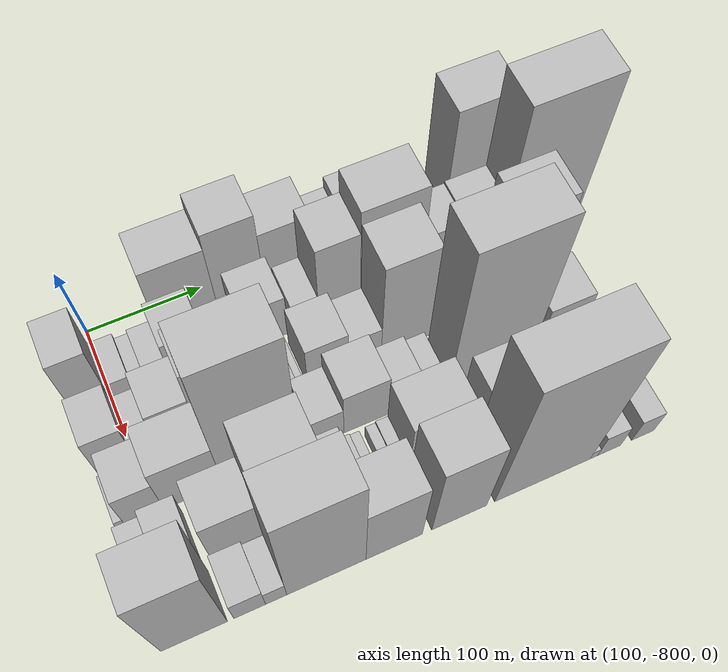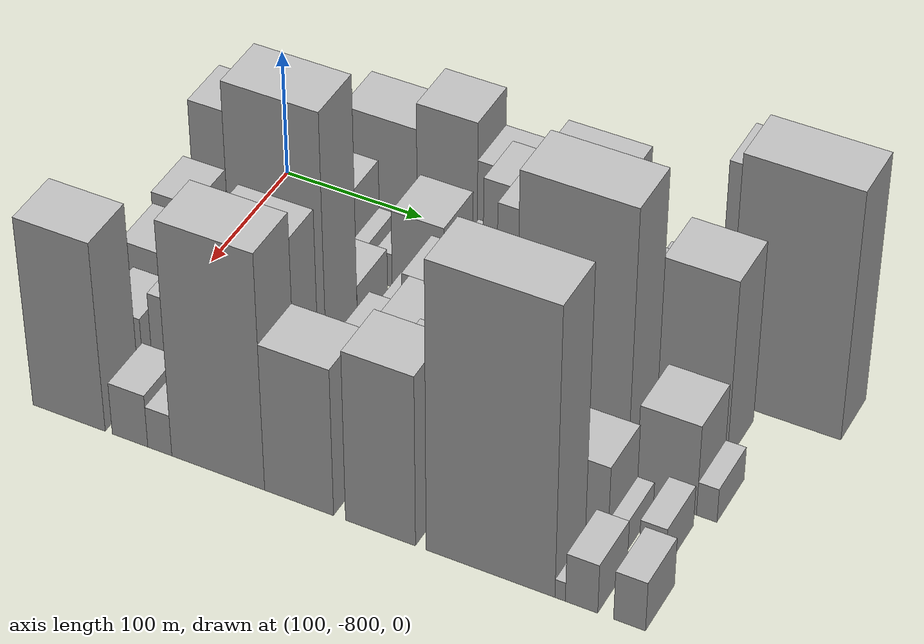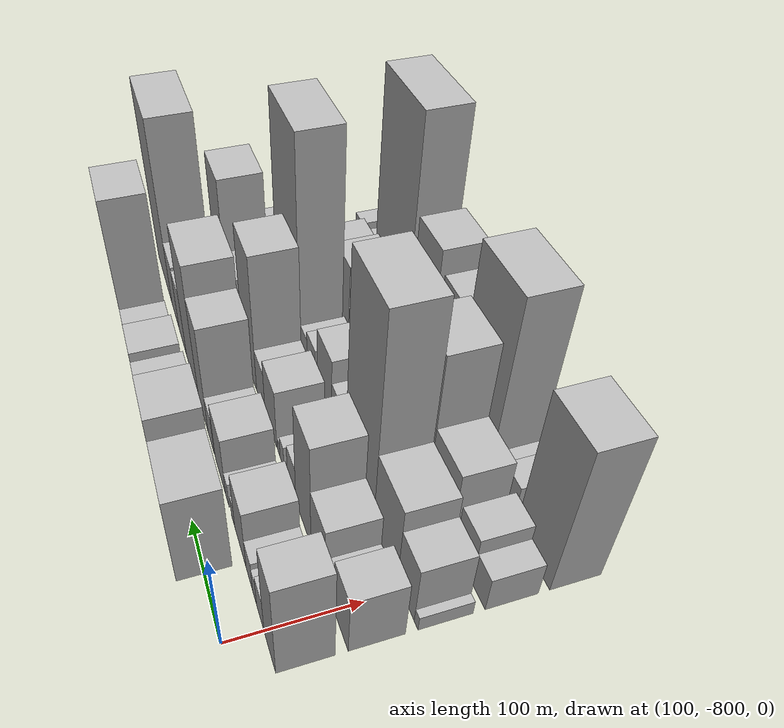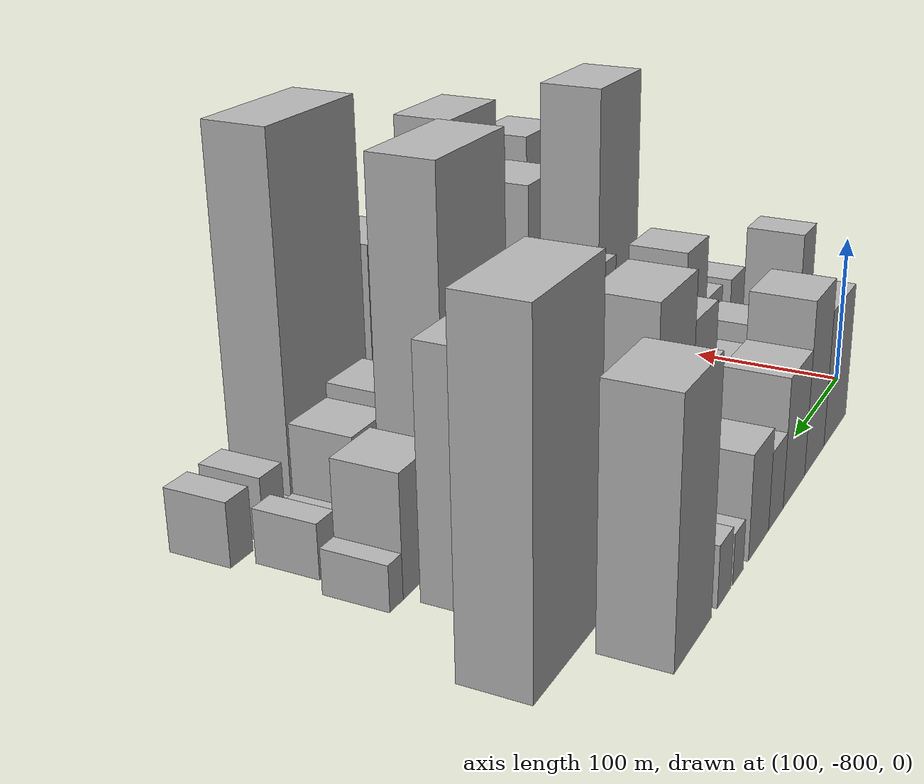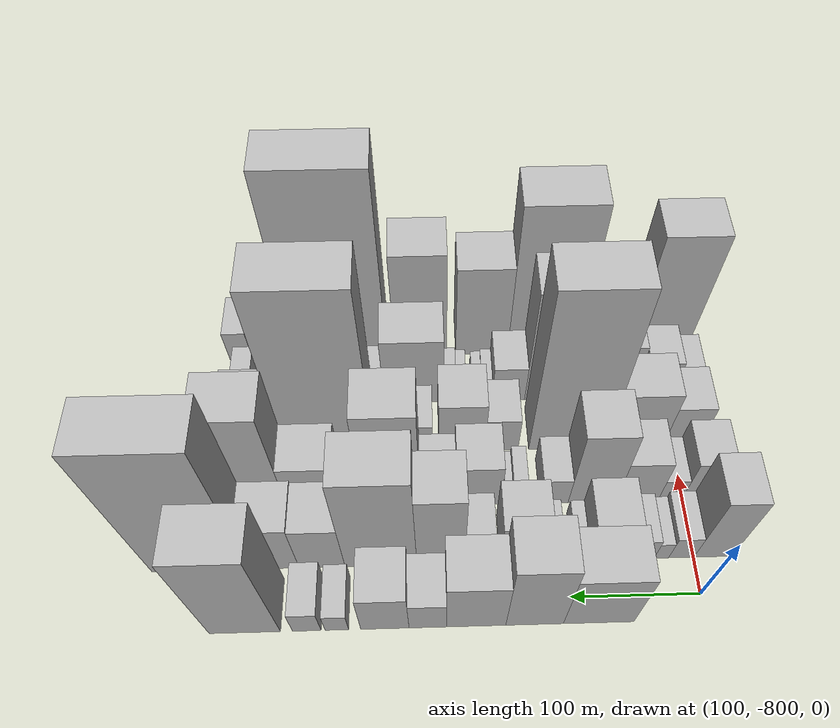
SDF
<sdf version="1.6">
 <world name="default">
  <model name="building_1">
   <static>1</static>
   <pose>100.0000 -719.4231 0 0.000000 0.000000 0.000000</pose>
   <link name="link">
    <pose>0 0 45.00 0 0 0</pose>
    <collision name="collision"><geometry><box><size>40.0000 53.0513 90.0000</size></box></geometry></collision>
    <visual name="visual">
     <cast_shadows>0</cast_shadows>
     <geometry><box><size>40.0000 53.0513 90.0000</size></box></geometry>
     <material>
      <script>
       <uri>model://HANNAS_wall/materials/scripts</uri>
       <uri>model://HANNAS_wall/materials/textures</uri>
       <name>vrc/HANNAS_wall</name>
      </script>
     </material>
    </visual>
   </link>
  </model>
  <model name="building_2">
   <static>1</static>
   <pose>100.0000 -671.3288 0 0.000000 0.000000 0.000000</pose>
   <link name="link">
    <pose>0 0 55.50 0 0 0</pose>
    <collision name="collision"><geometry><box><size>40.0000 43.1372 111.0000</size></box></geometry></collision>
    <visual name="visual">
     <cast_shadows>0</cast_shadows>
     <geometry><box><size>40.0000 43.1372 111.0000</size></box></geometry>
     <material>
      <script>
       <uri>model://HANNAS_wall/materials/scripts</uri>
       <uri>model://HANNAS_wall/materials/textures</uri>
       <name>vrc/HANNAS_wall</name>
      </script>
     </material>
    </visual>
   </link>
  </model>
  <model name="building_3">
   <static>1</static>
   <pose>100.0000 -627.5946 0 0.000000 0.000000 0.000000</pose>
   <link name="link">
    <pose>0 0 40.50 0 0 0</pose>
    <collision name="collision"><geometry><box><size>40.0000 44.3313 81.0000</size></box></geometry></collision>
    <visual name="visual">
     <cast_shadows>0</cast_shadows>
     <geometry><box><size>40.0000 44.3313 81.0000</size></box></geometry>
     <material>
      <script>
       <uri>model://HANNAS_wall/materials/scripts</uri>
       <uri>model://HANNAS_wall/materials/textures</uri>
       <name>vrc/HANNAS_wall</name>
      </script>
     </material>
    </visual>
   </link>
  </model>
  <model name="building_4">
   <static>1</static>
   <pose>100.0000 -591.4456 0 0.000000 0.000000 0.000000</pose>
   <link name="link">
    <pose>0 0 24.00 0 0 0</pose>
    <collision name="collision"><geometry><box><size>40.0000 27.9667 48.0000</size></box></geometry></collision>
    <visual name="visual">
     <cast_shadows>0</cast_shadows>
     <geometry><box><size>40.0000 27.9667 48.0000</size></box></geometry>
     <material>
      <script>
       <uri>model://HANNAS_wall/materials/scripts</uri>
       <uri>model://HANNAS_wall/materials/textures</uri>
       <name>vrc/HANNAS_wall</name>
      </script>
     </material>
    </visual>
   </link>
  </model>
  <model name="building_5">
   <static>1</static>
   <pose>100.0000 -559.4655 0 0.000000 0.000000 0.000000</pose>
   <link name="link">
    <pose>0 0 31.50 0 0 0</pose>
    <collision name="collision"><geometry><box><size>40.0000 35.9933 63.0000</size></box></geometry></collision>
    <visual name="visual">
     <cast_shadows>0</cast_shadows>
     <geometry><box><size>40.0000 35.9933 63.0000</size></box></geometry>
     <material>
      <script>
       <uri>model://HANNAS_wall/materials/scripts</uri>
       <uri>model://HANNAS_wall/materials/textures</uri>
       <name>vrc/HANNAS_wall</name>
      </script>
     </material>
    </visual>
   </link>
  </model>
  <model name="building_6">
   <static>1</static>
   <pose>100.0000 -523.7106 0 0.000000 0.000000 0.000000</pose>
   <link name="link">
    <pose>0 0 15.00 0 0 0</pose>
    <collision name="collision"><geometry><box><size>40.0000 17.5167 30.0000</size></box></geometry></collision>
    <visual name="visual">
     <cast_shadows>0</cast_shadows>
     <geometry><box><size>40.0000 17.5167 30.0000</size></box></geometry>
     <material>
      <script>
       <uri>model://HANNAS_wall/materials/scripts</uri>
       <uri>model://HANNAS_wall/materials/textures</uri>
       <name>vrc/HANNAS_wall</name>
      </script>
     </material>
    </visual>
   </link>
  </model>
  <model name="building_7">
   <static>1</static>
   <pose>100.0000 -501.3725 0 0.000000 0.000000 0.000000</pose>
   <link name="link">
    <pose>0 0 18.00 0 0 0</pose>
    <collision name="collision"><geometry><box><size>40.0000 21.1595 36.0000</size></box></geometry></collision>
    <visual name="visual">
     <cast_shadows>0</cast_shadows>
     <geometry><box><size>40.0000 21.1595 36.0000</size></box></geometry>
     <material>
      <script>
       <uri>model://HANNAS_wall/materials/scripts</uri>
       <uri>model://HANNAS_wall/materials/textures</uri>
       <name>vrc/HANNAS_wall</name>
      </script>
     </material>
    </visual>
   </link>
  </model>
  <model name="building_8">
   <static>1</static>
   <pose>100.0000 -455.3490 0 0.000000 0.000000 0.000000</pose>
   <link name="link">
    <pose>0 0 72.00 0 0 0</pose>
    <collision name="collision"><geometry><box><size>40.0000 52.8873 144.0000</size></box></geometry></collision>
    <visual name="visual">
     <cast_shadows>0</cast_shadows>
     <geometry><box><size>40.0000 52.8873 144.0000</size></box></geometry>
     <material>
      <script>
       <uri>model://HANNAS_wall/materials/scripts</uri>
       <uri>model://HANNAS_wall/materials/textures</uri>
       <name>vrc/HANNAS_wall</name>
      </script>
     </material>
    </visual>
   </link>
  </model>
  <model name="building_47">
   <static>1</static>
   <pose>149.0000 -815.1454 0 0.000000 0.000000 0.000000</pose>
   <link name="link">
    <pose>0 0 49.50 0 0 0</pose>
    <collision name="collision"><geometry><box><size>40.0000 29.7091 99.0000</size></box></geometry></collision>
    <visual name="visual">
     <cast_shadows>0</cast_shadows>
     <geometry><box><size>40.0000 29.7091 99.0000</size></box></geometry>
     <material>
      <script>
       <uri>model://HANNAS_wall/materials/scripts</uri>
       <uri>model://HANNAS_wall/materials/textures</uri>
       <name>vrc/HANNAS_wall</name>
      </script>
     </material>
    </visual>
   </link>
  </model>
  <model name="building_48">
   <static>1</static>
   <pose>149.0000 -790.3223 0 0.000000 0.000000 0.000000</pose>
   <link name="link">
    <pose>0 0 18.00 0 0 0</pose>
    <collision name="collision"><geometry><box><size>40.0000 19.9372 36.0000</size></box></geometry></collision>
    <visual name="visual">
     <cast_shadows>0</cast_shadows>
     <geometry><box><size>40.0000 19.9372 36.0000</size></box></geometry>
     <material>
      <script>
       <uri>model://HANNAS_wall/materials/scripts</uri>
       <uri>model://HANNAS_wall/materials/textures</uri>
       <name>vrc/HANNAS_wall</name>
      </script>
     </material>
    </visual>
   </link>
  </model>
  <model name="building_49">
   <static>1</static>
   <pose>149.0000 -774.7295 0 0.000000 0.000000 0.000000</pose>
   <link name="link">
    <pose>0 0 13.50 0 0 0</pose>
    <collision name="collision"><geometry><box><size>40.0000 11.2483 27.0000</size></box></geometry></collision>
    <visual name="visual">
     <cast_shadows>0</cast_shadows>
     <geometry><box><size>40.0000 11.2483 27.0000</size></box></geometry>
     <material>
      <script>
       <uri>model://HANNAS_wall/materials/scripts</uri>
       <uri>model://HANNAS_wall/materials/textures</uri>
       <name>vrc/HANNAS_wall</name>
      </script>
     </material>
    </visual>
   </link>
  </model>
  <model name="building_50">
   <static>1</static>
   <pose>149.0000 -759.7266 0 0.000000 0.000000 0.000000</pose>
   <link name="link">
    <pose>0 0 16.50 0 0 0</pose>
    <collision name="collision"><geometry><box><size>40.0000 18.7577 33.0000</size></box></geometry></collision>
    <visual name="visual">
     <cast_shadows>0</cast_shadows>
     <geometry><box><size>40.0000 18.7577 33.0000</size></box></geometry>
     <material>
      <script>
       <uri>model://HANNAS_wall/materials/scripts</uri>
       <uri>model://HANNAS_wall/materials/textures</uri>
       <name>vrc/HANNAS_wall</name>
      </script>
     </material>
    </visual>
   </link>
  </model>
  <model name="building_51">
   <static>1</static>
   <pose>149.0000 -733.0212 0 0.000000 0.000000 0.000000</pose>
   <link name="link">
    <pose>0 0 31.50 0 0 0</pose>
    <collision name="collision"><geometry><box><size>40.0000 34.6530 63.0000</size></box></geometry></collision>
    <visual name="visual">
     <cast_shadows>0</cast_shadows>
     <geometry><box><size>40.0000 34.6530 63.0000</size></box></geometry>
     <material>
      <script>
       <uri>model://HANNAS_wall/materials/scripts</uri>
       <uri>model://HANNAS_wall/materials/textures</uri>
       <name>vrc/HANNAS_wall</name>
      </script>
     </material>
    </visual>
   </link>
  </model>
  <model name="building_52">
   <static>1</static>
   <pose>149.0000 -710.3172 0 0.000000 0.000000 0.000000</pose>
   <link name="link">
    <pose>0 0 12.00 0 0 0</pose>
    <collision name="collision"><geometry><box><size>40.0000 10.7550 24.0000</size></box></geometry></collision>
    <visual name="visual">
     <cast_shadows>0</cast_shadows>
     <geometry><box><size>40.0000 10.7550 24.0000</size></box></geometry>
     <material>
      <script>
       <uri>model://HANNAS_wall/materials/scripts</uri>
       <uri>model://HANNAS_wall/materials/textures</uri>
       <name>vrc/HANNAS_wall</name>
      </script>
     </material>
    </visual>
   </link>
  </model>
  <model name="building_53">
   <static>1</static>
   <pose>149.0000 -691.1721 0 0.000000 0.000000 0.000000</pose>
   <link name="link">
    <pose>0 0 13.50 0 0 0</pose>
    <collision name="collision"><geometry><box><size>40.0000 11.5352 27.0000</size></box></geometry></collision>
    <visual name="visual">
     <cast_shadows>0</cast_shadows>
     <geometry><box><size>40.0000 11.5352 27.0000</size></box></geometry>
     <material>
      <script>
       <uri>model://HANNAS_wall/materials/scripts</uri>
       <uri>model://HANNAS_wall/materials/textures</uri>
       <name>vrc/HANNAS_wall</name>
      </script>
     </material>
    </visual>
   </link>
  </model>
  <model name="building_54">
   <static>1</static>
   <pose>149.0000 -666.8618 0 0.000000 0.000000 0.000000</pose>
   <link name="link">
    <pose>0 0 31.50 0 0 0</pose>
    <collision name="collision"><geometry><box><size>40.0000 37.0853 63.0000</size></box></geometry></collision>
    <visual name="visual">
     <cast_shadows>0</cast_shadows>
     <geometry><box><size>40.0000 37.0853 63.0000</size></box></geometry>
     <material>
      <script>
       <uri>model://HANNAS_wall/materials/scripts</uri>
       <uri>model://HANNAS_wall/materials/textures</uri>
       <name>vrc/HANNAS_wall</name>
      </script>
     </material>
    </visual>
   </link>
  </model>
  <model name="building_55">
   <static>1</static>
   <pose>149.0000 -632.7382 0 0.000000 0.000000 0.000000</pose>
   <link name="link">
    <pose>0 0 21.00 0 0 0</pose>
    <collision name="collision"><geometry><box><size>40.0000 23.1619 42.0000</size></box></geometry></collision>
    <visual name="visual">
     <cast_shadows>0</cast_shadows>
     <geometry><box><size>40.0000 23.1619 42.0000</size></box></geometry>
     <material>
      <script>
       <uri>model://HANNAS_wall/materials/scripts</uri>
       <uri>model://HANNAS_wall/materials/textures</uri>
       <name>vrc/HANNAS_wall</name>
      </script>
     </material>
    </visual>
   </link>
  </model>
  <model name="building_56">
   <static>1</static>
   <pose>149.0000 -602.5373 0 0.000000 0.000000 0.000000</pose>
   <link name="link">
    <pose>0 0 57.00 0 0 0</pose>
    <collision name="collision"><geometry><box><size>40.0000 37.2399 114.0000</size></box></geometry></collision>
    <visual name="visual">
     <cast_shadows>0</cast_shadows>
     <geometry><box><size>40.0000 37.2399 114.0000</size></box></geometry>
     <material>
      <script>
       <uri>model://HANNAS_wall/materials/scripts</uri>
       <uri>model://HANNAS_wall/materials/textures</uri>
       <name>vrc/HANNAS_wall</name>
      </script>
     </material>
    </visual>
   </link>
  </model>
  <model name="building_57">
   <static>1</static>
   <pose>149.0000 -556.0575 0 0.000000 0.000000 0.000000</pose>
   <link name="link">
    <pose>0 0 72.00 0 0 0</pose>
    <collision name="collision"><geometry><box><size>40.0000 55.7196 144.0000</size></box></geometry></collision>
    <visual name="visual">
     <cast_shadows>0</cast_shadows>
     <geometry><box><size>40.0000 55.7196 144.0000</size></box></geometry>
     <material>
      <script>
       <uri>model://HANNAS_wall/materials/scripts</uri>
       <uri>model://HANNAS_wall/materials/textures</uri>
       <name>vrc/HANNAS_wall</name>
      </script>
     </material>
    </visual>
   </link>
  </model>
  <model name="building_58">
   <static>1</static>
   <pose>149.0000 -510.4276 0 0.000000 0.000000 0.000000</pose>
   <link name="link">
    <pose>0 0 34.50 0 0 0</pose>
    <collision name="collision"><geometry><box><size>40.0000 35.5402 69.0000</size></box></geometry></collision>
    <visual name="visual">
     <cast_shadows>0</cast_shadows>
     <geometry><box><size>40.0000 35.5402 69.0000</size></box></geometry>
     <material>
      <script>
       <uri>model://HANNAS_wall/materials/scripts</uri>
       <uri>model://HANNAS_wall/materials/textures</uri>
       <name>vrc/HANNAS_wall</name>
      </script>
     </material>
    </visual>
   </link>
  </model>
  <model name="building_59">
   <static>1</static>
   <pose>149.0000 -473.8199 0 0.000000 0.000000 0.000000</pose>
   <link name="link">
    <pose>0 0 36.00 0 0 0</pose>
    <collision name="collision"><geometry><box><size>40.0000 37.6751 72.0000</size></box></geometry></collision>
    <visual name="visual">
     <cast_shadows>0</cast_shadows>
     <geometry><box><size>40.0000 37.6751 72.0000</size></box></geometry>
     <material>
      <script>
       <uri>model://HANNAS_wall/materials/scripts</uri>
       <uri>model://HANNAS_wall/materials/textures</uri>
       <name>vrc/HANNAS_wall</name>
      </script>
     </material>
    </visual>
   </link>
  </model>
  <model name="building_60">
   <static>1</static>
   <pose>149.0000 -416.9487 0 0.000000 0.000000 0.000000</pose>
   <link name="link">
    <pose>0 0 97.50 0 0 0</pose>
    <collision name="collision"><geometry><box><size>40.0000 76.0673 195.0000</size></box></geometry></collision>
    <visual name="visual">
     <cast_shadows>0</cast_shadows>
     <geometry><box><size>40.0000 76.0673 195.0000</size></box></geometry>
     <material>
      <script>
       <uri>model://HANNAS_wall/materials/scripts</uri>
       <uri>model://HANNAS_wall/materials/textures</uri>
       <name>vrc/HANNAS_wall</name>
      </script>
     </material>
    </visual>
   </link>
  </model>
  <model name="building_97">
   <static>1</static>
   <pose>198.0000 -814.7216 0 0.000000 0.000000 0.000000</pose>
   <link name="link">
    <pose>0 0 30.00 0 0 0</pose>
    <collision name="collision"><geometry><box><size>40.0000 30.5568 60.0000</size></box></geometry></collision>
    <visual name="visual">
     <cast_shadows>0</cast_shadows>
     <geometry><box><size>40.0000 30.5568 60.0000</size></box></geometry>
     <material>
      <script>
       <uri>model://HANNAS_wall/materials/scripts</uri>
       <uri>model://HANNAS_wall/materials/textures</uri>
       <name>vrc/HANNAS_wall</name>
      </script>
     </material>
    </visual>
   </link>
  </model>
  <model name="building_98">
   <static>1</static>
   <pose>198.0000 -789.7803 0 0.000000 0.000000 0.000000</pose>
   <link name="link">
    <pose>0 0 16.50 0 0 0</pose>
    <collision name="collision"><geometry><box><size>40.0000 19.3258 33.0000</size></box></geometry></collision>
    <visual name="visual">
     <cast_shadows>0</cast_shadows>
     <geometry><box><size>40.0000 19.3258 33.0000</size></box></geometry>
     <material>
      <script>
       <uri>model://HANNAS_wall/materials/scripts</uri>
       <uri>model://HANNAS_wall/materials/textures</uri>
       <name>vrc/HANNAS_wall</name>
      </script>
     </material>
    </visual>
   </link>
  </model>
  <model name="building_99">
   <static>1</static>
   <pose>198.0000 -763.0940 0 0.000000 0.000000 0.000000</pose>
   <link name="link">
    <pose>0 0 31.50 0 0 0</pose>
    <collision name="collision"><geometry><box><size>40.0000 34.0467 63.0000</size></box></geometry></collision>
    <visual name="visual">
     <cast_shadows>0</cast_shadows>
     <geometry><box><size>40.0000 34.0467 63.0000</size></box></geometry>
     <material>
      <script>
       <uri>model://HANNAS_wall/materials/scripts</uri>
       <uri>model://HANNAS_wall/materials/textures</uri>
       <name>vrc/HANNAS_wall</name>
      </script>
     </material>
    </visual>
   </link>
  </model>
  <model name="building_100">
   <static>1</static>
   <pose>198.0000 -726.5063 0 0.000000 0.000000 0.000000</pose>
   <link name="link">
    <pose>0 0 54.00 0 0 0</pose>
    <collision name="collision"><geometry><box><size>40.0000 39.1287 108.0000</size></box></geometry></collision>
    <visual name="visual">
     <cast_shadows>0</cast_shadows>
     <geometry><box><size>40.0000 39.1287 108.0000</size></box></geometry>
     <material>
      <script>
       <uri>model://HANNAS_wall/materials/scripts</uri>
       <uri>model://HANNAS_wall/materials/textures</uri>
       <name>vrc/HANNAS_wall</name>
      </script>
     </material>
    </visual>
   </link>
  </model>
  <model name="building_101">
   <static>1</static>
   <pose>198.0000 -695.4100 0 0.000000 0.000000 0.000000</pose>
   <link name="link">
    <pose>0 0 19.50 0 0 0</pose>
    <collision name="collision"><geometry><box><size>40.0000 23.0640 39.0000</size></box></geometry></collision>
    <visual name="visual">
     <cast_shadows>0</cast_shadows>
     <geometry><box><size>40.0000 23.0640 39.0000</size></box></geometry>
     <material>
      <script>
       <uri>model://HANNAS_wall/materials/scripts</uri>
       <uri>model://HANNAS_wall/materials/textures</uri>
       <name>vrc/HANNAS_wall</name>
      </script>
     </material>
    </visual>
   </link>
  </model>
  <model name="building_102">
   <static>1</static>
   <pose>198.0000 -667.9913 0 0.000000 0.000000 0.000000</pose>
   <link name="link">
    <pose>0 0 12.00 0 0 0</pose>
    <collision name="collision"><geometry><box><size>40.0000 11.7734 24.0000</size></box></geometry></collision>
    <visual name="visual">
     <cast_shadows>0</cast_shadows>
     <geometry><box><size>40.0000 11.7734 24.0000</size></box></geometry>
     <material>
      <script>
       <uri>model://HANNAS_wall/materials/scripts</uri>
       <uri>model://HANNAS_wall/materials/textures</uri>
       <name>vrc/HANNAS_wall</name>
      </script>
     </material>
    </visual>
   </link>
  </model>
  <model name="building_103">
   <static>1</static>
   <pose>198.0000 -658.7109 0 0.000000 0.000000 0.000000</pose>
   <link name="link">
    <pose>0 0 7.50 0 0 0</pose>
    <collision name="collision"><geometry><box><size>40.0000 6.7872 15.0000</size></box></geometry></collision>
    <visual name="visual">
     <cast_shadows>0</cast_shadows>
     <geometry><box><size>40.0000 6.7872 15.0000</size></box></geometry>
     <material>
      <script>
       <uri>model://HANNAS_wall/materials/scripts</uri>
       <uri>model://HANNAS_wall/materials/textures</uri>
       <name>vrc/HANNAS_wall</name>
      </script>
     </material>
    </visual>
   </link>
  </model>
  <model name="building_104">
   <static>1</static>
   <pose>198.0000 -634.2638 0 0.000000 0.000000 0.000000</pose>
   <link name="link">
    <pose>0 0 31.50 0 0 0</pose>
    <collision name="collision"><geometry><box><size>40.0000 36.1070 63.0000</size></box></geometry></collision>
    <visual name="visual">
     <cast_shadows>0</cast_shadows>
     <geometry><box><size>40.0000 36.1070 63.0000</size></box></geometry>
     <material>
      <script>
       <uri>model://HANNAS_wall/materials/scripts</uri>
       <uri>model://HANNAS_wall/materials/textures</uri>
       <name>vrc/HANNAS_wall</name>
      </script>
     </material>
    </visual>
   </link>
  </model>
  <model name="building_105">
   <static>1</static>
   <pose>198.0000 -601.8614 0 0.000000 0.000000 0.000000</pose>
   <link name="link">
    <pose>0 0 24.00 0 0 0</pose>
    <collision name="collision"><geometry><box><size>40.0000 28.6979 48.0000</size></box></geometry></collision>
    <visual name="visual">
     <cast_shadows>0</cast_shadows>
     <geometry><box><size>40.0000 28.6979 48.0000</size></box></geometry>
     <material>
      <script>
       <uri>model://HANNAS_wall/materials/scripts</uri>
       <uri>model://HANNAS_wall/materials/textures</uri>
       <name>vrc/HANNAS_wall</name>
      </script>
     </material>
    </visual>
   </link>
  </model>
  <model name="building_106">
   <static>1</static>
   <pose>198.0000 -564.6860 0 0.000000 0.000000 0.000000</pose>
   <link name="link">
    <pose>0 0 72.00 0 0 0</pose>
    <collision name="collision"><geometry><box><size>40.0000 45.6528 144.0000</size></box></geometry></collision>
    <visual name="visual">
     <cast_shadows>0</cast_shadows>
     <geometry><box><size>40.0000 45.6528 144.0000</size></box></geometry>
     <material>
      <script>
       <uri>model://HANNAS_wall/materials/scripts</uri>
       <uri>model://HANNAS_wall/materials/textures</uri>
       <name>vrc/HANNAS_wall</name>
      </script>
     </material>
    </visual>
   </link>
  </model>
  <model name="building_107">
   <static>1</static>
   <pose>198.0000 -526.8649 0 0.000000 0.000000 0.000000</pose>
   <link name="link">
    <pose>0 0 10.50 0 0 0</pose>
    <collision name="collision"><geometry><box><size>40.0000 9.9894 21.0000</size></box></geometry></collision>
    <visual name="visual">
     <cast_shadows>0</cast_shadows>
     <geometry><box><size>40.0000 9.9894 21.0000</size></box></geometry>
     <material>
      <script>
       <uri>model://HANNAS_wall/materials/scripts</uri>
       <uri>model://HANNAS_wall/materials/textures</uri>
       <name>vrc/HANNAS_wall</name>
      </script>
     </material>
    </visual>
   </link>
  </model>
  <model name="building_108">
   <static>1</static>
   <pose>198.0000 -501.2645 0 0.000000 0.000000 0.000000</pose>
   <link name="link">
    <pose>0 0 34.50 0 0 0</pose>
    <collision name="collision"><geometry><box><size>40.0000 41.2113 69.0000</size></box></geometry></collision>
    <visual name="visual">
     <cast_shadows>0</cast_shadows>
     <geometry><box><size>40.0000 41.2113 69.0000</size></box></geometry>
     <material>
      <script>
       <uri>model://HANNAS_wall/materials/scripts</uri>
       <uri>model://HANNAS_wall/materials/textures</uri>
       <name>vrc/HANNAS_wall</name>
      </script>
     </material>
    </visual>
   </link>
  </model>
  <model name="building_109">
   <static>1</static>
   <pose>198.0000 -456.5820 0 0.000000 0.000000 0.000000</pose>
   <link name="link">
    <pose>0 0 72.00 0 0 0</pose>
    <collision name="collision"><geometry><box><size>40.0000 48.1538 144.0000</size></box></geometry></collision>
    <visual name="visual">
     <cast_shadows>0</cast_shadows>
     <geometry><box><size>40.0000 48.1538 144.0000</size></box></geometry>
     <material>
      <script>
       <uri>model://HANNAS_wall/materials/scripts</uri>
       <uri>model://HANNAS_wall/materials/textures</uri>
       <name>vrc/HANNAS_wall</name>
      </script>
     </material>
    </visual>
   </link>
  </model>
  <model name="building_141">
   <static>1</static>
   <pose>247.0000 -826.6258 0 0.000000 0.000000 0.000000</pose>
   <link name="link">
    <pose>0 0 7.50 0 0 0</pose>
    <collision name="collision"><geometry><box><size>40.0000 6.7483 15.0000</size></box></geometry></collision>
    <visual name="visual">
     <cast_shadows>0</cast_shadows>
     <geometry><box><size>40.0000 6.7483 15.0000</size></box></geometry>
     <material>
      <script>
       <uri>model://HANNAS_wall/materials/scripts</uri>
       <uri>model://HANNAS_wall/materials/textures</uri>
       <name>vrc/HANNAS_wall</name>
      </script>
     </material>
    </visual>
   </link>
  </model>
  <model name="building_142">
   <static>1</static>
   <pose>247.0000 -807.6875 0 0.000000 0.000000 0.000000</pose>
   <link name="link">
    <pose>0 0 30.00 0 0 0</pose>
    <collision name="collision"><geometry><box><size>40.0000 31.1284 60.0000</size></box></geometry></collision>
    <visual name="visual">
     <cast_shadows>0</cast_shadows>
     <geometry><box><size>40.0000 31.1284 60.0000</size></box></geometry>
     <material>
      <script>
       <uri>model://HANNAS_wall/materials/scripts</uri>
       <uri>model://HANNAS_wall/materials/textures</uri>
       <name>vrc/HANNAS_wall</name>
      </script>
     </material>
    </visual>
   </link>
  </model>
  <model name="building_143">
   <static>1</static>
   <pose>247.0000 -767.9801 0 0.000000 0.000000 0.000000</pose>
   <link name="link">
    <pose>0 0 40.50 0 0 0</pose>
    <collision name="collision"><geometry><box><size>40.0000 48.2863 81.0000</size></box></geometry></collision>
    <visual name="visual">
     <cast_shadows>0</cast_shadows>
     <geometry><box><size>40.0000 48.2863 81.0000</size></box></geometry>
     <material>
      <script>
       <uri>model://HANNAS_wall/materials/scripts</uri>
       <uri>model://HANNAS_wall/materials/textures</uri>
       <name>vrc/HANNAS_wall</name>
      </script>
     </material>
    </visual>
   </link>
  </model>
  <model name="building_144">
   <static>1</static>
   <pose>247.0000 -711.3877 0 0.000000 0.000000 0.000000</pose>
   <link name="link">
    <pose>0 0 106.50 0 0 0</pose>
    <collision name="collision"><geometry><box><size>40.0000 64.8985 213.0000</size></box></geometry></collision>
    <visual name="visual">
     <cast_shadows>0</cast_shadows>
     <geometry><box><size>40.0000 64.8985 213.0000</size></box></geometry>
     <material>
      <script>
       <uri>model://HANNAS_wall/materials/scripts</uri>
       <uri>model://HANNAS_wall/materials/textures</uri>
       <name>vrc/HANNAS_wall</name>
      </script>
     </material>
    </visual>
   </link>
  </model>
  <model name="building_145">
   <static>1</static>
   <pose>247.0000 -656.1148 0 0.000000 0.000000 0.000000</pose>
   <link name="link">
    <pose>0 0 24.00 0 0 0</pose>
    <collision name="collision"><geometry><box><size>40.0000 27.6474 48.0000</size></box></geometry></collision>
    <visual name="visual">
     <cast_shadows>0</cast_shadows>
     <geometry><box><size>40.0000 27.6474 48.0000</size></box></geometry>
     <material>
      <script>
       <uri>model://HANNAS_wall/materials/scripts</uri>
       <uri>model://HANNAS_wall/materials/textures</uri>
       <name>vrc/HANNAS_wall</name>
      </script>
     </material>
    </visual>
   </link>
  </model>
  <model name="building_146">
   <static>1</static>
   <pose>247.0000 -622.9275 0 0.000000 0.000000 0.000000</pose>
   <link name="link">
    <pose>0 0 36.00 0 0 0</pose>
    <collision name="collision"><geometry><box><size>40.0000 38.7273 72.0000</size></box></geometry></collision>
    <visual name="visual">
     <cast_shadows>0</cast_shadows>
     <geometry><box><size>40.0000 38.7273 72.0000</size></box></geometry>
     <material>
      <script>
       <uri>model://HANNAS_wall/materials/scripts</uri>
       <uri>model://HANNAS_wall/materials/textures</uri>
       <name>vrc/HANNAS_wall</name>
      </script>
     </material>
    </visual>
   </link>
  </model>
  <model name="building_147">
   <static>1</static>
   <pose>247.0000 -586.0438 0 0.000000 0.000000 0.000000</pose>
   <link name="link">
    <pose>0 0 21.00 0 0 0</pose>
    <collision name="collision"><geometry><box><size>40.0000 25.0402 42.0000</size></box></geometry></collision>
    <visual name="visual">
     <cast_shadows>0</cast_shadows>
     <geometry><box><size>40.0000 25.0402 42.0000</size></box></geometry>
     <material>
      <script>
       <uri>model://HANNAS_wall/materials/scripts</uri>
       <uri>model://HANNAS_wall/materials/textures</uri>
       <name>vrc/HANNAS_wall</name>
      </script>
     </material>
    </visual>
   </link>
  </model>
  <model name="building_148">
   <static>1</static>
   <pose>247.0000 -564.2746 0 0.000000 0.000000 0.000000</pose>
   <link name="link">
    <pose>0 0 16.50 0 0 0</pose>
    <collision name="collision"><geometry><box><size>40.0000 18.4982 33.0000</size></box></geometry></collision>
    <visual name="visual">
     <cast_shadows>0</cast_shadows>
     <geometry><box><size>40.0000 18.4982 33.0000</size></box></geometry>
     <material>
      <script>
       <uri>model://HANNAS_wall/materials/scripts</uri>
       <uri>model://HANNAS_wall/materials/textures</uri>
       <name>vrc/HANNAS_wall</name>
      </script>
     </material>
    </visual>
   </link>
  </model>
  <model name="building_149">
   <static>1</static>
   <pose>247.0000 -512.9525 0 0.000000 0.000000 0.000000</pose>
   <link name="link">
    <pose>0 0 109.50 0 0 0</pose>
    <collision name="collision"><geometry><box><size>40.0000 74.1459 219.0000</size></box></geometry></collision>
    <visual name="visual">
     <cast_shadows>0</cast_shadows>
     <geometry><box><size>40.0000 74.1459 219.0000</size></box></geometry>
     <material>
      <script>
       <uri>model://HANNAS_wall/materials/scripts</uri>
       <uri>model://HANNAS_wall/materials/textures</uri>
       <name>vrc/HANNAS_wall</name>
      </script>
     </material>
    </visual>
   </link>
  </model>
  <model name="building_150">
   <static>1</static>
   <pose>247.0000 -450.2749 0 0.000000 0.000000 0.000000</pose>
   <link name="link">
    <pose>0 0 36.00 0 0 0</pose>
    <collision name="collision"><geometry><box><size>40.0000 39.2093 72.0000</size></box></geometry></collision>
    <visual name="visual">
     <cast_shadows>0</cast_shadows>
     <geometry><box><size>40.0000 39.2093 72.0000</size></box></geometry>
     <material>
      <script>
       <uri>model://HANNAS_wall/materials/scripts</uri>
       <uri>model://HANNAS_wall/materials/textures</uri>
       <name>vrc/HANNAS_wall</name>
      </script>
     </material>
    </visual>
   </link>
  </model>
  <model name="building_151">
   <static>1</static>
   <pose>247.0000 -424.0492 0 0.000000 0.000000 0.000000</pose>
   <link name="link">
    <pose>0 0 13.50 0 0 0</pose>
    <collision name="collision"><geometry><box><size>40.0000 13.2422 27.0000</size></box></geometry></collision>
    <visual name="visual">
     <cast_shadows>0</cast_shadows>
     <geometry><box><size>40.0000 13.2422 27.0000</size></box></geometry>
     <material>
      <script>
       <uri>model://HANNAS_wall/materials/scripts</uri>
       <uri>model://HANNAS_wall/materials/textures</uri>
       <name>vrc/HANNAS_wall</name>
      </script>
     </material>
    </visual>
   </link>
  </model>
  <model name="building_189">
   <static>1</static>
   <pose>296.0000 -819.4252 0 0.000000 0.000000 0.000000</pose>
   <link name="link">
    <pose>0 0 18.00 0 0 0</pose>
    <collision name="collision"><geometry><box><size>40.0000 21.1496 36.0000</size></box></geometry></collision>
    <visual name="visual">
     <cast_shadows>0</cast_shadows>
     <geometry><box><size>40.0000 21.1496 36.0000</size></box></geometry>
     <material>
      <script>
       <uri>model://HANNAS_wall/materials/scripts</uri>
       <uri>model://HANNAS_wall/materials/textures</uri>
       <name>vrc/HANNAS_wall</name>
      </script>
     </material>
    </visual>
   </link>
  </model>
  <model name="building_190">
   <static>1</static>
   <pose>296.0000 -794.6336 0 0.000000 0.000000 0.000000</pose>
   <link name="link">
    <pose>0 0 25.50 0 0 0</pose>
    <collision name="collision"><geometry><box><size>40.0000 28.4335 51.0000</size></box></geometry></collision>
    <visual name="visual">
     <cast_shadows>0</cast_shadows>
     <geometry><box><size>40.0000 28.4335 51.0000</size></box></geometry>
     <material>
      <script>
       <uri>model://HANNAS_wall/materials/scripts</uri>
       <uri>model://HANNAS_wall/materials/textures</uri>
       <name>vrc/HANNAS_wall</name>
      </script>
     </material>
    </visual>
   </link>
  </model>
  <model name="building_191">
   <static>1</static>
   <pose>296.0000 -751.5723 0 0.000000 0.000000 0.000000</pose>
   <link name="link">
    <pose>0 0 37.50 0 0 0</pose>
    <collision name="collision"><geometry><box><size>40.0000 43.6891 75.0000</size></box></geometry></collision>
    <visual name="visual">
     <cast_shadows>0</cast_shadows>
     <geometry><box><size>40.0000 43.6891 75.0000</size></box></geometry>
     <material>
      <script>
       <uri>model://HANNAS_wall/materials/scripts</uri>
       <uri>model://HANNAS_wall/materials/textures</uri>
       <name>vrc/HANNAS_wall</name>
      </script>
     </material>
    </visual>
   </link>
  </model>
  <model name="building_192">
   <static>1</static>
   <pose>296.0000 -704.5399 0 0.000000 0.000000 0.000000</pose>
   <link name="link">
    <pose>0 0 73.50 0 0 0</pose>
    <collision name="collision"><geometry><box><size>40.0000 50.3758 147.0000</size></box></geometry></collision>
    <visual name="visual">
     <cast_shadows>0</cast_shadows>
     <geometry><box><size>40.0000 50.3758 147.0000</size></box></geometry>
     <material>
      <script>
       <uri>model://HANNAS_wall/materials/scripts</uri>
       <uri>model://HANNAS_wall/materials/textures</uri>
       <name>vrc/HANNAS_wall</name>
      </script>
     </material>
    </visual>
   </link>
  </model>
  <model name="building_193">
   <static>1</static>
   <pose>296.0000 -665.2070 0 0.000000 0.000000 0.000000</pose>
   <link name="link">
    <pose>0 0 24.00 0 0 0</pose>
    <collision name="collision"><geometry><box><size>40.0000 28.2900 48.0000</size></box></geometry></collision>
    <visual name="visual">
     <cast_shadows>0</cast_shadows>
     <geometry><box><size>40.0000 28.2900 48.0000</size></box></geometry>
     <material>
      <script>
       <uri>model://HANNAS_wall/materials/scripts</uri>
       <uri>model://HANNAS_wall/materials/textures</uri>
       <name>vrc/HANNAS_wall</name>
      </script>
     </material>
    </visual>
   </link>
  </model>
  <model name="building_194">
   <static>1</static>
   <pose>296.0000 -646.3958 0 0.000000 0.000000 0.000000</pose>
   <link name="link">
    <pose>0 0 10.50 0 0 0</pose>
    <collision name="collision"><geometry><box><size>40.0000 9.3324 21.0000</size></box></geometry></collision>
    <visual name="visual">
     <cast_shadows>0</cast_shadows>
     <geometry><box><size>40.0000 9.3324 21.0000</size></box></geometry>
     <material>
      <script>
       <uri>model://HANNAS_wall/materials/scripts</uri>
       <uri>model://HANNAS_wall/materials/textures</uri>
       <name>vrc/HANNAS_wall</name>
      </script>
     </material>
    </visual>
   </link>
  </model>
  <model name="building_195">
   <static>1</static>
   <pose>296.0000 -637.5343 0 0.000000 0.000000 0.000000</pose>
   <link name="link">
    <pose>0 0 9.00 0 0 0</pose>
    <collision name="collision"><geometry><box><size>40.0000 8.3905 18.0000</size></box></geometry></collision>
    <visual name="visual">
     <cast_shadows>0</cast_shadows>
     <geometry><box><size>40.0000 8.3905 18.0000</size></box></geometry>
     <material>
      <script>
       <uri>model://HANNAS_wall/materials/scripts</uri>
       <uri>model://HANNAS_wall/materials/textures</uri>
       <name>vrc/HANNAS_wall</name>
      </script>
     </material>
    </visual>
   </link>
  </model>
  <model name="building_196">
   <static>1</static>
   <pose>296.0000 -624.0342 0 0.000000 0.000000 0.000000</pose>
   <link name="link">
    <pose>0 0 10.50 0 0 0</pose>
    <collision name="collision"><geometry><box><size>40.0000 8.6097 21.0000</size></box></geometry></collision>
    <visual name="visual">
     <cast_shadows>0</cast_shadows>
     <geometry><box><size>40.0000 8.6097 21.0000</size></box></geometry>
     <material>
      <script>
       <uri>model://HANNAS_wall/materials/scripts</uri>
       <uri>model://HANNAS_wall/materials/textures</uri>
       <name>vrc/HANNAS_wall</name>
      </script>
     </material>
    </visual>
   </link>
  </model>
  <model name="building_197">
   <static>1</static>
   <pose>296.0000 -614.4387 0 0.000000 0.000000 0.000000</pose>
   <link name="link">
    <pose>0 0 12.00 0 0 0</pose>
    <collision name="collision"><geometry><box><size>40.0000 10.5815 24.0000</size></box></geometry></collision>
    <visual name="visual">
     <cast_shadows>0</cast_shadows>
     <geometry><box><size>40.0000 10.5815 24.0000</size></box></geometry>
     <material>
      <script>
       <uri>model://HANNAS_wall/materials/scripts</uri>
       <uri>model://HANNAS_wall/materials/textures</uri>
       <name>vrc/HANNAS_wall</name>
      </script>
     </material>
    </visual>
   </link>
  </model>
  <model name="building_198">
   <static>1</static>
   <pose>296.0000 -583.4193 0 0.000000 0.000000 0.000000</pose>
   <link name="link">
    <pose>0 0 45.00 0 0 0</pose>
    <collision name="collision"><geometry><box><size>40.0000 51.4572 90.0000</size></box></geometry></collision>
    <visual name="visual">
     <cast_shadows>0</cast_shadows>
     <geometry><box><size>40.0000 51.4572 90.0000</size></box></geometry>
     <material>
      <script>
       <uri>model://HANNAS_wall/materials/scripts</uri>
       <uri>model://HANNAS_wall/materials/textures</uri>
       <name>vrc/HANNAS_wall</name>
      </script>
     </material>
    </visual>
   </link>
  </model>
  <model name="building_199">
   <static>1</static>
   <pose>296.0000 -549.8149 0 0.000000 0.000000 0.000000</pose>
   <link name="link">
    <pose>0 0 15.00 0 0 0</pose>
    <collision name="collision"><geometry><box><size>40.0000 15.7516 30.0000</size></box></geometry></collision>
    <visual name="visual">
     <cast_shadows>0</cast_shadows>
     <geometry><box><size>40.0000 15.7516 30.0000</size></box></geometry>
     <material>
      <script>
       <uri>model://HANNAS_wall/materials/scripts</uri>
       <uri>model://HANNAS_wall/materials/textures</uri>
       <name>vrc/HANNAS_wall</name>
      </script>
     </material>
    </visual>
   </link>
  </model>
  <model name="building_200">
   <static>1</static>
   <pose>296.0000 -522.6217 0 0.000000 0.000000 0.000000</pose>
   <link name="link">
    <pose>0 0 37.50 0 0 0</pose>
    <collision name="collision"><geometry><box><size>40.0000 38.6346 75.0000</size></box></geometry></collision>
    <visual name="visual">
     <cast_shadows>0</cast_shadows>
     <geometry><box><size>40.0000 38.6346 75.0000</size></box></geometry>
     <material>
      <script>
       <uri>model://HANNAS_wall/materials/scripts</uri>
       <uri>model://HANNAS_wall/materials/textures</uri>
       <name>vrc/HANNAS_wall</name>
      </script>
     </material>
    </visual>
   </link>
  </model>
  <model name="building_201">
   <static>1</static>
   <pose>296.0000 -484.4059 0 0.000000 0.000000 0.000000</pose>
   <link name="link">
    <pose>0 0 33.00 0 0 0</pose>
    <collision name="collision"><geometry><box><size>40.0000 37.7970 66.0000</size></box></geometry></collision>
    <visual name="visual">
     <cast_shadows>0</cast_shadows>
     <geometry><box><size>40.0000 37.7970 66.0000</size></box></geometry>
     <material>
      <script>
       <uri>model://HANNAS_wall/materials/scripts</uri>
       <uri>model://HANNAS_wall/materials/textures</uri>
       <name>vrc/HANNAS_wall</name>
      </script>
     </material>
    </visual>
   </link>
  </model>
  <model name="building_202">
   <static>1</static>
   <pose>296.0000 -460.0622 0 0.000000 0.000000 0.000000</pose>
   <link name="link">
    <pose>0 0 12.00 0 0 0</pose>
    <collision name="collision"><geometry><box><size>40.0000 10.8905 24.0000</size></box></geometry></collision>
    <visual name="visual">
     <cast_shadows>0</cast_shadows>
     <geometry><box><size>40.0000 10.8905 24.0000</size></box></geometry>
     <material>
      <script>
       <uri>model://HANNAS_wall/materials/scripts</uri>
       <uri>model://HANNAS_wall/materials/textures</uri>
       <name>vrc/HANNAS_wall</name>
      </script>
     </material>
    </visual>
   </link>
  </model>
  <model name="building_203">
   <static>1</static>
   <pose>296.0000 -437.1054 0 0.000000 0.000000 0.000000</pose>
   <link name="link">
    <pose>0 0 16.50 0 0 0</pose>
    <collision name="collision"><geometry><box><size>40.0000 17.0231 33.0000</size></box></geometry></collision>
    <visual name="visual">
     <cast_shadows>0</cast_shadows>
     <geometry><box><size>40.0000 17.0231 33.0000</size></box></geometry>
     <material>
      <script>
       <uri>model://HANNAS_wall/materials/scripts</uri>
       <uri>model://HANNAS_wall/materials/textures</uri>
       <name>vrc/HANNAS_wall</name>
      </script>
     </material>
    </visual>
   </link>
  </model>
  <model name="building_241">
   <static>1</static>
   <pose>345.0000 -804.2568 0 0.000000 0.000000 0.000000</pose>
   <link name="link">
    <pose>0 0 75.00 0 0 0</pose>
    <collision name="collision"><geometry><box><size>40.0000 51.4863 150.0000</size></box></geometry></collision>
    <visual name="visual">
     <cast_shadows>0</cast_shadows>
     <geometry><box><size>40.0000 51.4863 150.0000</size></box></geometry>
     <material>
      <script>
       <uri>model://HANNAS_wall/materials/scripts</uri>
       <uri>model://HANNAS_wall/materials/textures</uri>
       <name>vrc/HANNAS_wall</name>
      </script>
     </material>
    </visual>
   </link>
  </model>
  <model name="building_242">
   <static>1</static>
   <pose>345.0000 -761.0214 0 0.000000 0.000000 0.000000</pose>
   <link name="link">
    <pose>0 0 21.00 0 0 0</pose>
    <collision name="collision"><geometry><box><size>40.0000 24.9845 42.0000</size></box></geometry></collision>
    <visual name="visual">
     <cast_shadows>0</cast_shadows>
     <geometry><box><size>40.0000 24.9845 42.0000</size></box></geometry>
     <material>
      <script>
       <uri>model://HANNAS_wall/materials/scripts</uri>
       <uri>model://HANNAS_wall/materials/textures</uri>
       <name>vrc/HANNAS_wall</name>
      </script>
     </material>
    </visual>
   </link>
  </model>
  <model name="building_243">
   <static>1</static>
   <pose>345.0000 -740.1299 0 0.000000 0.000000 0.000000</pose>
   <link name="link">
    <pose>0 0 16.50 0 0 0</pose>
    <collision name="collision"><geometry><box><size>40.0000 16.7986 33.0000</size></box></geometry></collision>
    <visual name="visual">
     <cast_shadows>0</cast_shadows>
     <geometry><box><size>40.0000 16.7986 33.0000</size></box></geometry>
     <material>
      <script>
       <uri>model://HANNAS_wall/materials/scripts</uri>
       <uri>model://HANNAS_wall/materials/textures</uri>
       <name>vrc/HANNAS_wall</name>
      </script>
     </material>
    </visual>
   </link>
  </model>
  <model name="building_244">
   <static>1</static>
   <pose>345.0000 -699.7189 0 0.000000 0.000000 0.000000</pose>
   <link name="link">
    <pose>0 0 93.00 0 0 0</pose>
    <collision name="collision"><geometry><box><size>40.0000 64.0234 186.0000</size></box></geometry></collision>
    <visual name="visual">
     <cast_shadows>0</cast_shadows>
     <geometry><box><size>40.0000 64.0234 186.0000</size></box></geometry>
     <material>
      <script>
       <uri>model://HANNAS_wall/materials/scripts</uri>
       <uri>model://HANNAS_wall/materials/textures</uri>
       <name>vrc/HANNAS_wall</name>
      </script>
     </material>
    </visual>
   </link>
  </model>
  <model name="building_245">
   <static>1</static>
   <pose>345.0000 -644.3866 0 0.000000 0.000000 0.000000</pose>
   <link name="link">
    <pose>0 0 58.50 0 0 0</pose>
    <collision name="collision"><geometry><box><size>40.0000 46.6412 117.0000</size></box></geometry></collision>
    <visual name="visual">
     <cast_shadows>0</cast_shadows>
     <geometry><box><size>40.0000 46.6412 117.0000</size></box></geometry>
     <material>
      <script>
       <uri>model://HANNAS_wall/materials/scripts</uri>
       <uri>model://HANNAS_wall/materials/textures</uri>
       <name>vrc/HANNAS_wall</name>
      </script>
     </material>
    </visual>
   </link>
  </model>
  <model name="building_246">
   <static>1</static>
   <pose>345.0000 -589.8190 0 0.000000 0.000000 0.000000</pose>
   <link name="link">
    <pose>0 0 67.50 0 0 0</pose>
    <collision name="collision"><geometry><box><size>40.0000 46.4939 135.0000</size></box></geometry></collision>
    <visual name="visual">
     <cast_shadows>0</cast_shadows>
     <geometry><box><size>40.0000 46.4939 135.0000</size></box></geometry>
     <material>
      <script>
       <uri>model://HANNAS_wall/materials/scripts</uri>
       <uri>model://HANNAS_wall/materials/textures</uri>
       <name>vrc/HANNAS_wall</name>
      </script>
     </material>
    </visual>
   </link>
  </model>
  <model name="building_247">
   <static>1</static>
   <pose>345.0000 -517.8174 0 0.000000 0.000000 0.000000</pose>
   <link name="link">
    <pose>0 0 112.50 0 0 0</pose>
    <collision name="collision"><geometry><box><size>40.0000 83.5094 225.0000</size></box></geometry></collision>
    <visual name="visual">
     <cast_shadows>0</cast_shadows>
     <geometry><box><size>40.0000 83.5094 225.0000</size></box></geometry>
     <material>
      <script>
       <uri>model://HANNAS_wall/materials/scripts</uri>
       <uri>model://HANNAS_wall/materials/textures</uri>
       <name>vrc/HANNAS_wall</name>
      </script>
     </material>
    </visual>
   </link>
  </model>
  <model name="building_248">
   <static>1</static>
   <pose>345.0000 -472.7428 0 0.000000 0.000000 0.000000</pose>
   <link name="link">
    <pose>0 0 7.50 0 0 0</pose>
    <collision name="collision"><geometry><box><size>40.0000 6.6399 15.0000</size></box></geometry></collision>
    <visual name="visual">
     <cast_shadows>0</cast_shadows>
     <geometry><box><size>40.0000 6.6399 15.0000</size></box></geometry>
     <material>
      <script>
       <uri>model://HANNAS_wall/materials/scripts</uri>
       <uri>model://HANNAS_wall/materials/textures</uri>
       <name>vrc/HANNAS_wall</name>
      </script>
     </material>
    </visual>
   </link>
  </model>
  <model name="building_249">
   <static>1</static>
   <pose>345.0000 -459.1075 0 0.000000 0.000000 0.000000</pose>
   <link name="link">
    <pose>0 0 19.50 0 0 0</pose>
    <collision name="collision"><geometry><box><size>40.0000 20.6308 39.0000</size></box></geometry></collision>
    <visual name="visual">
     <cast_shadows>0</cast_shadows>
     <geometry><box><size>40.0000 20.6308 39.0000</size></box></geometry>
     <material>
      <script>
       <uri>model://HANNAS_wall/materials/scripts</uri>
       <uri>model://HANNAS_wall/materials/textures</uri>
       <name>vrc/HANNAS_wall</name>
      </script>
     </material>
    </visual>
   </link>
  </model>
  <model name="building_250">
   <static>1</static>
   <pose>345.0000 -428.7388 0 0.000000 0.000000 0.000000</pose>
   <link name="link">
    <pose>0 0 19.50 0 0 0</pose>
    <collision name="collision"><geometry><box><size>40.0000 20.1066 39.0000</size></box></geometry></collision>
    <visual name="visual">
     <cast_shadows>0</cast_shadows>
     <geometry><box><size>40.0000 20.1066 39.0000</size></box></geometry>
     <material>
      <script>
       <uri>model://HANNAS_wall/materials/scripts</uri>
       <uri>model://HANNAS_wall/materials/textures</uri>
       <name>vrc/HANNAS_wall</name>
      </script>
     </material>
    </visual>
   </link>
  </model>
 </world>
</sdf>
